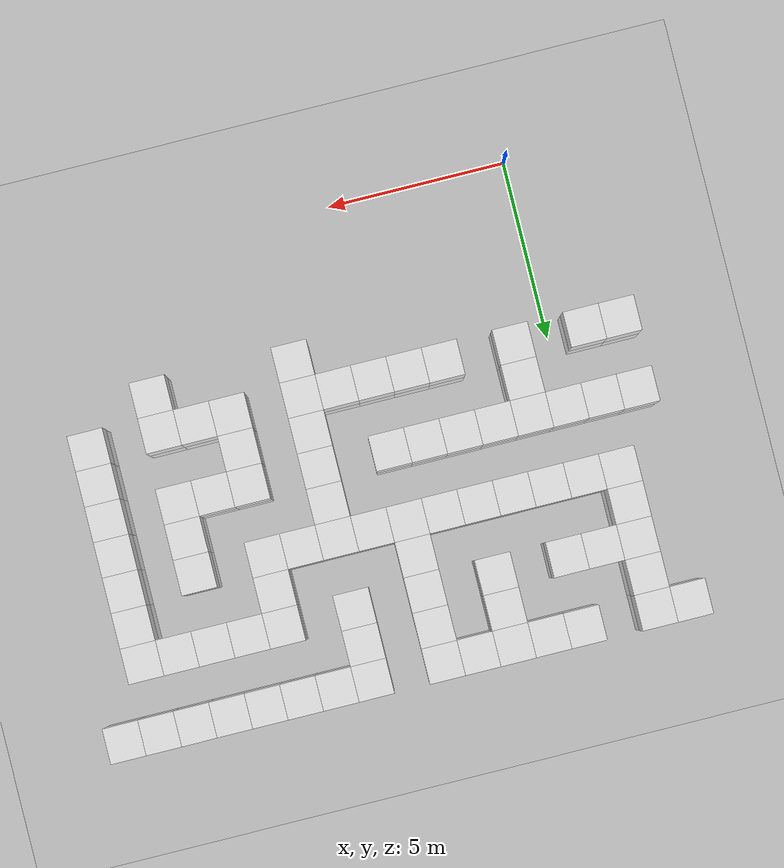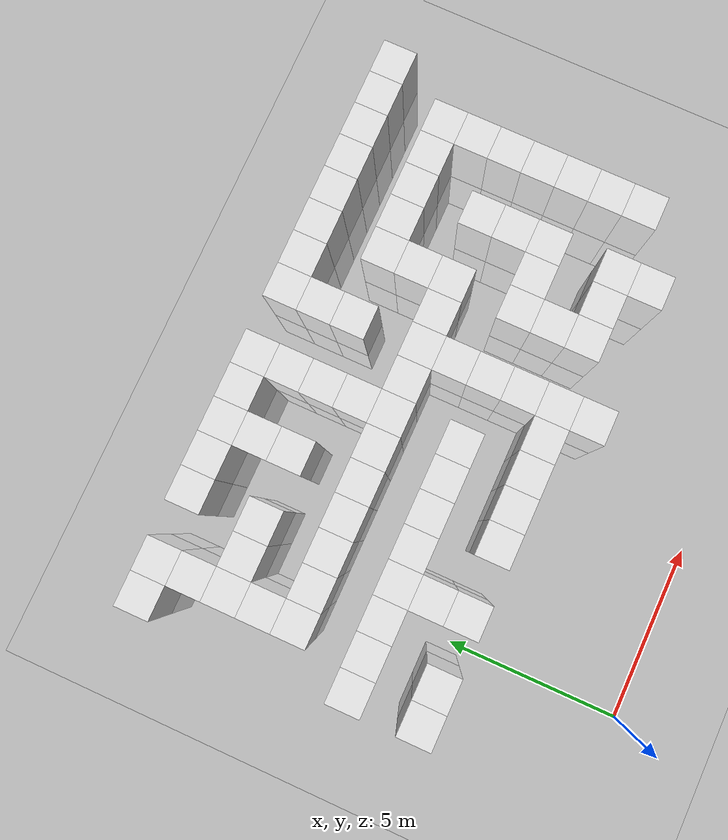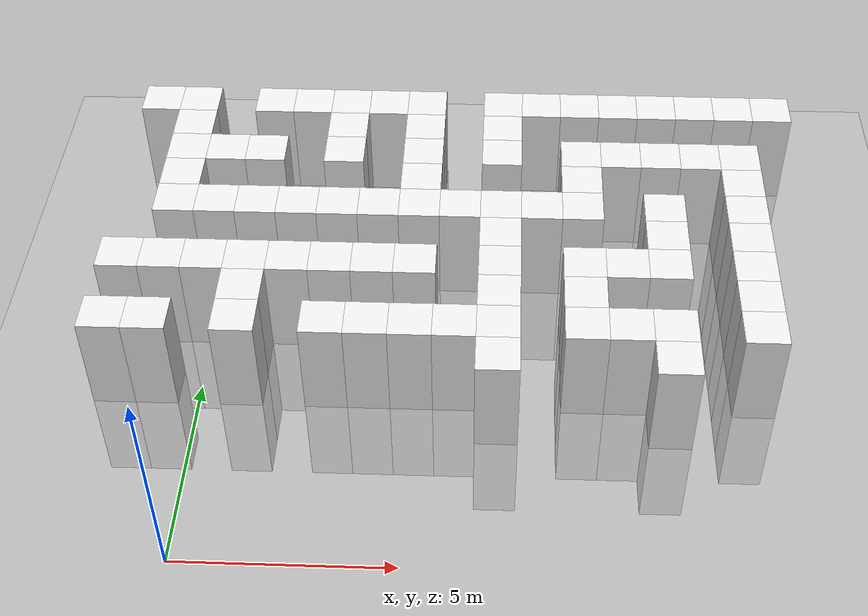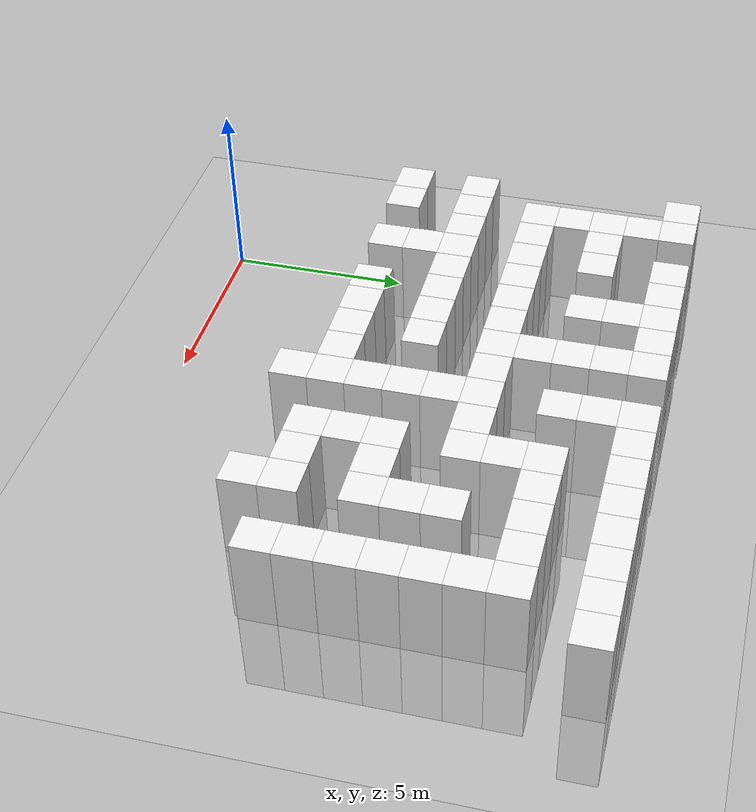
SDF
<sdf version="1.6">
 <world name="default">
  <model name="ground_plane">
   <static>1</static>
   <link name="link">
    <collision name="collision">
     <geometry><plane><normal>0 0 1</normal><size>100 100</size></plane></geometry>
     <surface><friction><ode><mu>100</mu><mu2>50</mu2></ode></friction></surface>
    </collision>
    <visual name="visual">
     <cast_shadows>0</cast_shadows>
     <geometry><plane><normal>0 0 1</normal><size>100 100</size></plane></geometry>
     <material>
      <script><uri>file://media/materials/scripts/gazebo.material</uri><name>Gazebo/Grey</name></script>
     </material>
    </visual>
   </link>
  </model>
  <model name="Unit_box_-2_13">
   <pose>-2 13 0 0 0 0</pose>
   <link name="Unit_box_-2_13_collision">
    <collision name="collision"><geometry><box><size>1 1 5</size></box></geometry></collision>
    <visual name="Unit_box_-2_13_visual">
     <geometry><box><size>1 1 5</size></box></geometry>
     <material>
      <script><name>Gazebo/White</name><uri>file://media/materials/scripts/gazebo.material</uri></script>
     </material>
    </visual>
   </link>
   <static>1</static>
  </model>
  <model name="Unit_box_-1_13">
   <pose>-1 13 0 0 0 0</pose>
   <link name="Unit_box_-1_13_collision">
    <collision name="collision"><geometry><box><size>1 1 5</size></box></geometry></collision>
    <visual name="Unit_box_-1_13_visual">
     <geometry><box><size>1 1 5</size></box></geometry>
     <material>
      <script><name>Gazebo/White</name><uri>file://media/materials/scripts/gazebo.material</uri></script>
     </material>
    </visual>
   </link>
   <static>1</static>
  </model>
  <model name="Unit_box_1_13">
   <pose>1 13 0 0 0 0</pose>
   <link name="Unit_box_1_13_collision">
    <collision name="collision"><geometry><box><size>1 1 5</size></box></geometry></collision>
    <visual name="Unit_box_1_13_visual">
     <geometry><box><size>1 1 5</size></box></geometry>
     <material>
      <script><name>Gazebo/White</name><uri>file://media/materials/scripts/gazebo.material</uri></script>
     </material>
    </visual>
   </link>
   <static>1</static>
  </model>
  <model name="Unit_box_2_13">
   <pose>2 13 0 0 0 0</pose>
   <link name="Unit_box_2_13_collision">
    <collision name="collision"><geometry><box><size>1 1 5</size></box></geometry></collision>
    <visual name="Unit_box_2_13_visual">
     <geometry><box><size>1 1 5</size></box></geometry>
     <material>
      <script><name>Gazebo/White</name><uri>file://media/materials/scripts/gazebo.material</uri></script>
     </material>
    </visual>
   </link>
   <static>1</static>
  </model>
  <model name="Unit_box_3_13">
   <pose>3 13 0 0 0 0</pose>
   <link name="Unit_box_3_13_collision">
    <collision name="collision"><geometry><box><size>1 1 5</size></box></geometry></collision>
    <visual name="Unit_box_3_13_visual">
     <geometry><box><size>1 1 5</size></box></geometry>
     <material>
      <script><name>Gazebo/White</name><uri>file://media/materials/scripts/gazebo.material</uri></script>
     </material>
    </visual>
   </link>
   <static>1</static>
  </model>
  <model name="Unit_box_4_13">
   <pose>4 13 0 0 0 0</pose>
   <link name="Unit_box_4_13_collision">
    <collision name="collision"><geometry><box><size>1 1 5</size></box></geometry></collision>
    <visual name="Unit_box_4_13_visual">
     <geometry><box><size>1 1 5</size></box></geometry>
     <material>
      <script><name>Gazebo/White</name><uri>file://media/materials/scripts/gazebo.material</uri></script>
     </material>
    </visual>
   </link>
   <static>1</static>
  </model>
  <model name="Unit_box_5_13">
   <pose>5 13 0 0 0 0</pose>
   <link name="Unit_box_5_13_collision">
    <collision name="collision"><geometry><box><size>1 1 5</size></box></geometry></collision>
    <visual name="Unit_box_5_13_visual">
     <geometry><box><size>1 1 5</size></box></geometry>
     <material>
      <script><name>Gazebo/White</name><uri>file://media/materials/scripts/gazebo.material</uri></script>
     </material>
    </visual>
   </link>
   <static>1</static>
  </model>
  <model name="Unit_box_7_13">
   <pose>7 13 0 0 0 0</pose>
   <link name="Unit_box_7_13_collision">
    <collision name="collision"><geometry><box><size>1 1 5</size></box></geometry></collision>
    <visual name="Unit_box_7_13_visual">
     <geometry><box><size>1 1 5</size></box></geometry>
     <material>
      <script><name>Gazebo/White</name><uri>file://media/materials/scripts/gazebo.material</uri></script>
     </material>
    </visual>
   </link>
   <static>1</static>
  </model>
  <model name="Unit_box_8_13">
   <pose>8 13 0 0 0 0</pose>
   <link name="Unit_box_8_13_collision">
    <collision name="collision"><geometry><box><size>1 1 5</size></box></geometry></collision>
    <visual name="Unit_box_8_13_visual">
     <geometry><box><size>1 1 5</size></box></geometry>
     <material>
      <script><name>Gazebo/White</name><uri>file://media/materials/scripts/gazebo.material</uri></script>
     </material>
    </visual>
   </link>
   <static>1</static>
  </model>
  <model name="Unit_box_9_13">
   <pose>9 13 0 0 0 0</pose>
   <link name="Unit_box_9_13_collision">
    <collision name="collision"><geometry><box><size>1 1 5</size></box></geometry></collision>
    <visual name="Unit_box_9_13_visual">
     <geometry><box><size>1 1 5</size></box></geometry>
     <material>
      <script><name>Gazebo/White</name><uri>file://media/materials/scripts/gazebo.material</uri></script>
     </material>
    </visual>
   </link>
   <static>1</static>
  </model>
  <model name="Unit_box_10_13">
   <pose>10 13 0 0 0 0</pose>
   <link name="Unit_box_10_13_collision">
    <collision name="collision"><geometry><box><size>1 1 5</size></box></geometry></collision>
    <visual name="Unit_box_10_13_visual">
     <geometry><box><size>1 1 5</size></box></geometry>
     <material>
      <script><name>Gazebo/White</name><uri>file://media/materials/scripts/gazebo.material</uri></script>
     </material>
    </visual>
   </link>
   <static>1</static>
  </model>
  <model name="Unit_box_11_13">
   <pose>11 13 0 0 0 0</pose>
   <link name="Unit_box_11_13_collision">
    <collision name="collision"><geometry><box><size>1 1 5</size></box></geometry></collision>
    <visual name="Unit_box_11_13_visual">
     <geometry><box><size>1 1 5</size></box></geometry>
     <material>
      <script><name>Gazebo/White</name><uri>file://media/materials/scripts/gazebo.material</uri></script>
     </material>
    </visual>
   </link>
   <static>1</static>
  </model>
  <model name="Unit_box_12_13">
   <pose>12 13 0 0 0 0</pose>
   <link name="Unit_box_12_13_collision">
    <collision name="collision"><geometry><box><size>1 1 5</size></box></geometry></collision>
    <visual name="Unit_box_12_13_visual">
     <geometry><box><size>1 1 5</size></box></geometry>
     <material>
      <script><name>Gazebo/White</name><uri>file://media/materials/scripts/gazebo.material</uri></script>
     </material>
    </visual>
   </link>
   <static>1</static>
  </model>
  <model name="Unit_box_13_13">
   <pose>13 13 0 0 0 0</pose>
   <link name="Unit_box_13_13_collision">
    <collision name="collision"><geometry><box><size>1 1 5</size></box></geometry></collision>
    <visual name="Unit_box_13_13_visual">
     <geometry><box><size>1 1 5</size></box></geometry>
     <material>
      <script><name>Gazebo/White</name><uri>file://media/materials/scripts/gazebo.material</uri></script>
     </material>
    </visual>
   </link>
   <static>1</static>
  </model>
  <model name="Unit_box_14_13">
   <pose>14 13 0 0 0 0</pose>
   <link name="Unit_box_14_13_collision">
    <collision name="collision"><geometry><box><size>1 1 5</size></box></geometry></collision>
    <visual name="Unit_box_14_13_visual">
     <geometry><box><size>1 1 5</size></box></geometry>
     <material>
      <script><name>Gazebo/White</name><uri>file://media/materials/scripts/gazebo.material</uri></script>
     </material>
    </visual>
   </link>
   <static>1</static>
  </model>
  <model name="Unit_box_-1_12">
   <pose>-1 12 0 0 0 0</pose>
   <link name="Unit_box_-1_12_collision">
    <collision name="collision"><geometry><box><size>1 1 5</size></box></geometry></collision>
    <visual name="Unit_box_-1_12_visual">
     <geometry><box><size>1 1 5</size></box></geometry>
     <material>
      <script><name>Gazebo/White</name><uri>file://media/materials/scripts/gazebo.material</uri></script>
     </material>
    </visual>
   </link>
   <static>1</static>
  </model>
  <model name="Unit_box_3_12">
   <pose>3 12 0 0 0 0</pose>
   <link name="Unit_box_3_12_collision">
    <collision name="collision"><geometry><box><size>1 1 5</size></box></geometry></collision>
    <visual name="Unit_box_3_12_visual">
     <geometry><box><size>1 1 5</size></box></geometry>
     <material>
      <script><name>Gazebo/White</name><uri>file://media/materials/scripts/gazebo.material</uri></script>
     </material>
    </visual>
   </link>
   <static>1</static>
  </model>
  <model name="Unit_box_5_12">
   <pose>5 12 0 0 0 0</pose>
   <link name="Unit_box_5_12_collision">
    <collision name="collision"><geometry><box><size>1 1 5</size></box></geometry></collision>
    <visual name="Unit_box_5_12_visual">
     <geometry><box><size>1 1 5</size></box></geometry>
     <material>
      <script><name>Gazebo/White</name><uri>file://media/materials/scripts/gazebo.material</uri></script>
     </material>
    </visual>
   </link>
   <static>1</static>
  </model>
  <model name="Unit_box_7_12">
   <pose>7 12 0 0 0 0</pose>
   <link name="Unit_box_7_12_collision">
    <collision name="collision"><geometry><box><size>1 1 5</size></box></geometry></collision>
    <visual name="Unit_box_7_12_visual">
     <geometry><box><size>1 1 5</size></box></geometry>
     <material>
      <script><name>Gazebo/White</name><uri>file://media/materials/scripts/gazebo.material</uri></script>
     </material>
    </visual>
   </link>
   <static>1</static>
  </model>
  <model name="Unit_box_-1_11">
   <pose>-1 11 0 0 0 0</pose>
   <link name="Unit_box_-1_11_collision">
    <collision name="collision"><geometry><box><size>1 1 5</size></box></geometry></collision>
    <visual name="Unit_box_-1_11_visual">
     <geometry><box><size>1 1 5</size></box></geometry>
     <material>
      <script><name>Gazebo/White</name><uri>file://media/materials/scripts/gazebo.material</uri></script>
     </material>
    </visual>
   </link>
   <static>1</static>
  </model>
  <model name="Unit_box_0_11">
   <pose>0 11 0 0 0 0</pose>
   <link name="Unit_box_0_11_collision">
    <collision name="collision"><geometry><box><size>1 1 5</size></box></geometry></collision>
    <visual name="Unit_box_0_11_visual">
     <geometry><box><size>1 1 5</size></box></geometry>
     <material>
      <script><name>Gazebo/White</name><uri>file://media/materials/scripts/gazebo.material</uri></script>
     </material>
    </visual>
   </link>
   <static>1</static>
  </model>
  <model name="Unit_box_1_11">
   <pose>1 11 0 0 0 0</pose>
   <link name="Unit_box_1_11_collision">
    <collision name="collision"><geometry><box><size>1 1 5</size></box></geometry></collision>
    <visual name="Unit_box_1_11_visual">
     <geometry><box><size>1 1 5</size></box></geometry>
     <material>
      <script><name>Gazebo/White</name><uri>file://media/materials/scripts/gazebo.material</uri></script>
     </material>
    </visual>
   </link>
   <static>1</static>
  </model>
  <model name="Unit_box_3_11">
   <pose>3 11 0 0 0 0</pose>
   <link name="Unit_box_3_11_collision">
    <collision name="collision"><geometry><box><size>1 1 5</size></box></geometry></collision>
    <visual name="Unit_box_3_11_visual">
     <geometry><box><size>1 1 5</size></box></geometry>
     <material>
      <script><name>Gazebo/White</name><uri>file://media/materials/scripts/gazebo.material</uri></script>
     </material>
    </visual>
   </link>
   <static>1</static>
  </model>
  <model name="Unit_box_5_11">
   <pose>5 11 0 0 0 0</pose>
   <link name="Unit_box_5_11_collision">
    <collision name="collision"><geometry><box><size>1 1 5</size></box></geometry></collision>
    <visual name="Unit_box_5_11_visual">
     <geometry><box><size>1 1 5</size></box></geometry>
     <material>
      <script><name>Gazebo/White</name><uri>file://media/materials/scripts/gazebo.material</uri></script>
     </material>
    </visual>
   </link>
   <static>1</static>
  </model>
  <model name="Unit_box_7_11">
   <pose>7 11 0 0 0 0</pose>
   <link name="Unit_box_7_11_collision">
    <collision name="collision"><geometry><box><size>1 1 5</size></box></geometry></collision>
    <visual name="Unit_box_7_11_visual">
     <geometry><box><size>1 1 5</size></box></geometry>
     <material>
      <script><name>Gazebo/White</name><uri>file://media/materials/scripts/gazebo.material</uri></script>
     </material>
    </visual>
   </link>
   <static>1</static>
  </model>
  <model name="Unit_box_9_11">
   <pose>9 11 0 0 0 0</pose>
   <link name="Unit_box_9_11_collision">
    <collision name="collision"><geometry><box><size>1 1 5</size></box></geometry></collision>
    <visual name="Unit_box_9_11_visual">
     <geometry><box><size>1 1 5</size></box></geometry>
     <material>
      <script><name>Gazebo/White</name><uri>file://media/materials/scripts/gazebo.material</uri></script>
     </material>
    </visual>
   </link>
   <static>1</static>
  </model>
  <model name="Unit_box_10_11">
   <pose>10 11 0 0 0 0</pose>
   <link name="Unit_box_10_11_collision">
    <collision name="collision"><geometry><box><size>1 1 5</size></box></geometry></collision>
    <visual name="Unit_box_10_11_visual">
     <geometry><box><size>1 1 5</size></box></geometry>
     <material>
      <script><name>Gazebo/White</name><uri>file://media/materials/scripts/gazebo.material</uri></script>
     </material>
    </visual>
   </link>
   <static>1</static>
  </model>
  <model name="Unit_box_11_11">
   <pose>11 11 0 0 0 0</pose>
   <link name="Unit_box_11_11_collision">
    <collision name="collision"><geometry><box><size>1 1 5</size></box></geometry></collision>
    <visual name="Unit_box_11_11_visual">
     <geometry><box><size>1 1 5</size></box></geometry>
     <material>
      <script><name>Gazebo/White</name><uri>file://media/materials/scripts/gazebo.material</uri></script>
     </material>
    </visual>
   </link>
   <static>1</static>
  </model>
  <model name="Unit_box_12_11">
   <pose>12 11 0 0 0 0</pose>
   <link name="Unit_box_12_11_collision">
    <collision name="collision"><geometry><box><size>1 1 5</size></box></geometry></collision>
    <visual name="Unit_box_12_11_visual">
     <geometry><box><size>1 1 5</size></box></geometry>
     <material>
      <script><name>Gazebo/White</name><uri>file://media/materials/scripts/gazebo.material</uri></script>
     </material>
    </visual>
   </link>
   <static>1</static>
  </model>
  <model name="Unit_box_13_11">
   <pose>13 11 0 0 0 0</pose>
   <link name="Unit_box_13_11_collision">
    <collision name="collision"><geometry><box><size>1 1 5</size></box></geometry></collision>
    <visual name="Unit_box_13_11_visual">
     <geometry><box><size>1 1 5</size></box></geometry>
     <material>
      <script><name>Gazebo/White</name><uri>file://media/materials/scripts/gazebo.material</uri></script>
     </material>
    </visual>
   </link>
   <static>1</static>
  </model>
  <model name="Unit_box_-1_10">
   <pose>-1 10 0 0 0 0</pose>
   <link name="Unit_box_-1_10_collision">
    <collision name="collision"><geometry><box><size>1 1 5</size></box></geometry></collision>
    <visual name="Unit_box_-1_10_visual">
     <geometry><box><size>1 1 5</size></box></geometry>
     <material>
      <script><name>Gazebo/White</name><uri>file://media/materials/scripts/gazebo.material</uri></script>
     </material>
    </visual>
   </link>
   <static>1</static>
  </model>
  <model name="Unit_box_5_10">
   <pose>5 10 0 0 0 0</pose>
   <link name="Unit_box_5_10_collision">
    <collision name="collision"><geometry><box><size>1 1 5</size></box></geometry></collision>
    <visual name="Unit_box_5_10_visual">
     <geometry><box><size>1 1 5</size></box></geometry>
     <material>
      <script><name>Gazebo/White</name><uri>file://media/materials/scripts/gazebo.material</uri></script>
     </material>
    </visual>
   </link>
   <static>1</static>
  </model>
  <model name="Unit_box_9_10">
   <pose>9 10 0 0 0 0</pose>
   <link name="Unit_box_9_10_collision">
    <collision name="collision"><geometry><box><size>1 1 5</size></box></geometry></collision>
    <visual name="Unit_box_9_10_visual">
     <geometry><box><size>1 1 5</size></box></geometry>
     <material>
      <script><name>Gazebo/White</name><uri>file://media/materials/scripts/gazebo.material</uri></script>
     </material>
    </visual>
   </link>
   <static>1</static>
  </model>
  <model name="Unit_box_13_10">
   <pose>13 10 0 0 0 0</pose>
   <link name="Unit_box_13_10_collision">
    <collision name="collision"><geometry><box><size>1 1 5</size></box></geometry></collision>
    <visual name="Unit_box_13_10_visual">
     <geometry><box><size>1 1 5</size></box></geometry>
     <material>
      <script><name>Gazebo/White</name><uri>file://media/materials/scripts/gazebo.material</uri></script>
     </material>
    </visual>
   </link>
   <static>1</static>
  </model>
  <model name="Unit_box_-1_9">
   <pose>-1 9 0 0 0 0</pose>
   <link name="Unit_box_-1_9_collision">
    <collision name="collision"><geometry><box><size>1 1 5</size></box></geometry></collision>
    <visual name="Unit_box_-1_9_visual">
     <geometry><box><size>1 1 5</size></box></geometry>
     <material>
      <script><name>Gazebo/White</name><uri>file://media/materials/scripts/gazebo.material</uri></script>
     </material>
    </visual>
   </link>
   <static>1</static>
  </model>
  <model name="Unit_box_0_9">
   <pose>0 9 0 0 0 0</pose>
   <link name="Unit_box_0_9_collision">
    <collision name="collision"><geometry><box><size>1 1 5</size></box></geometry></collision>
    <visual name="Unit_box_0_9_visual">
     <geometry><box><size>1 1 5</size></box></geometry>
     <material>
      <script><name>Gazebo/White</name><uri>file://media/materials/scripts/gazebo.material</uri></script>
     </material>
    </visual>
   </link>
   <static>1</static>
  </model>
  <model name="Unit_box_1_9">
   <pose>1 9 0 0 0 0</pose>
   <link name="Unit_box_1_9_collision">
    <collision name="collision"><geometry><box><size>1 1 5</size></box></geometry></collision>
    <visual name="Unit_box_1_9_visual">
     <geometry><box><size>1 1 5</size></box></geometry>
     <material>
      <script><name>Gazebo/White</name><uri>file://media/materials/scripts/gazebo.material</uri></script>
     </material>
    </visual>
   </link>
   <static>1</static>
  </model>
  <model name="Unit_box_2_9">
   <pose>2 9 0 0 0 0</pose>
   <link name="Unit_box_2_9_collision">
    <collision name="collision"><geometry><box><size>1 1 5</size></box></geometry></collision>
    <visual name="Unit_box_2_9_visual">
     <geometry><box><size>1 1 5</size></box></geometry>
     <material>
      <script><name>Gazebo/White</name><uri>file://media/materials/scripts/gazebo.material</uri></script>
     </material>
    </visual>
   </link>
   <static>1</static>
  </model>
  <model name="Unit_box_3_9">
   <pose>3 9 0 0 0 0</pose>
   <link name="Unit_box_3_9_collision">
    <collision name="collision"><geometry><box><size>1 1 5</size></box></geometry></collision>
    <visual name="Unit_box_3_9_visual">
     <geometry><box><size>1 1 5</size></box></geometry>
     <material>
      <script><name>Gazebo/White</name><uri>file://media/materials/scripts/gazebo.material</uri></script>
     </material>
    </visual>
   </link>
   <static>1</static>
  </model>
  <model name="Unit_box_4_9">
   <pose>4 9 0 0 0 0</pose>
   <link name="Unit_box_4_9_collision">
    <collision name="collision"><geometry><box><size>1 1 5</size></box></geometry></collision>
    <visual name="Unit_box_4_9_visual">
     <geometry><box><size>1 1 5</size></box></geometry>
     <material>
      <script><name>Gazebo/White</name><uri>file://media/materials/scripts/gazebo.material</uri></script>
     </material>
    </visual>
   </link>
   <static>1</static>
  </model>
  <model name="Unit_box_5_9">
   <pose>5 9 0 0 0 0</pose>
   <link name="Unit_box_5_9_collision">
    <collision name="collision"><geometry><box><size>1 1 5</size></box></geometry></collision>
    <visual name="Unit_box_5_9_visual">
     <geometry><box><size>1 1 5</size></box></geometry>
     <material>
      <script><name>Gazebo/White</name><uri>file://media/materials/scripts/gazebo.material</uri></script>
     </material>
    </visual>
   </link>
   <static>1</static>
  </model>
  <model name="Unit_box_6_9">
   <pose>6 9 0 0 0 0</pose>
   <link name="Unit_box_6_9_collision">
    <collision name="collision"><geometry><box><size>1 1 5</size></box></geometry></collision>
    <visual name="Unit_box_6_9_visual">
     <geometry><box><size>1 1 5</size></box></geometry>
     <material>
      <script><name>Gazebo/White</name><uri>file://media/materials/scripts/gazebo.material</uri></script>
     </material>
    </visual>
   </link>
   <static>1</static>
  </model>
  <model name="Unit_box_7_9">
   <pose>7 9 0 0 0 0</pose>
   <link name="Unit_box_7_9_collision">
    <collision name="collision"><geometry><box><size>1 1 5</size></box></geometry></collision>
    <visual name="Unit_box_7_9_visual">
     <geometry><box><size>1 1 5</size></box></geometry>
     <material>
      <script><name>Gazebo/White</name><uri>file://media/materials/scripts/gazebo.material</uri></script>
     </material>
    </visual>
   </link>
   <static>1</static>
  </model>
  <model name="Unit_box_8_9">
   <pose>8 9 0 0 0 0</pose>
   <link name="Unit_box_8_9_collision">
    <collision name="collision"><geometry><box><size>1 1 5</size></box></geometry></collision>
    <visual name="Unit_box_8_9_visual">
     <geometry><box><size>1 1 5</size></box></geometry>
     <material>
      <script><name>Gazebo/White</name><uri>file://media/materials/scripts/gazebo.material</uri></script>
     </material>
    </visual>
   </link>
   <static>1</static>
  </model>
  <model name="Unit_box_9_9">
   <pose>9 9 0 0 0 0</pose>
   <link name="Unit_box_9_9_collision">
    <collision name="collision"><geometry><box><size>1 1 5</size></box></geometry></collision>
    <visual name="Unit_box_9_9_visual">
     <geometry><box><size>1 1 5</size></box></geometry>
     <material>
      <script><name>Gazebo/White</name><uri>file://media/materials/scripts/gazebo.material</uri></script>
     </material>
    </visual>
   </link>
   <static>1</static>
  </model>
  <model name="Unit_box_11_9">
   <pose>11 9 0 0 0 0</pose>
   <link name="Unit_box_11_9_collision">
    <collision name="collision"><geometry><box><size>1 1 5</size></box></geometry></collision>
    <visual name="Unit_box_11_9_visual">
     <geometry><box><size>1 1 5</size></box></geometry>
     <material>
      <script><name>Gazebo/White</name><uri>file://media/materials/scripts/gazebo.material</uri></script>
     </material>
    </visual>
   </link>
   <static>1</static>
  </model>
  <model name="Unit_box_13_9">
   <pose>13 9 0 0 0 0</pose>
   <link name="Unit_box_13_9_collision">
    <collision name="collision"><geometry><box><size>1 1 5</size></box></geometry></collision>
    <visual name="Unit_box_13_9_visual">
     <geometry><box><size>1 1 5</size></box></geometry>
     <material>
      <script><name>Gazebo/White</name><uri>file://media/materials/scripts/gazebo.material</uri></script>
     </material>
    </visual>
   </link>
   <static>1</static>
  </model>
  <model name="Unit_box_7_8">
   <pose>7 8 0 0 0 0</pose>
   <link name="Unit_box_7_8_collision">
    <collision name="collision"><geometry><box><size>1 1 5</size></box></geometry></collision>
    <visual name="Unit_box_7_8_visual">
     <geometry><box><size>1 1 5</size></box></geometry>
     <material>
      <script><name>Gazebo/White</name><uri>file://media/materials/scripts/gazebo.material</uri></script>
     </material>
    </visual>
   </link>
   <static>1</static>
  </model>
  <model name="Unit_box_11_8">
   <pose>11 8 0 0 0 0</pose>
   <link name="Unit_box_11_8_collision">
    <collision name="collision"><geometry><box><size>1 1 5</size></box></geometry></collision>
    <visual name="Unit_box_11_8_visual">
     <geometry><box><size>1 1 5</size></box></geometry>
     <material>
      <script><name>Gazebo/White</name><uri>file://media/materials/scripts/gazebo.material</uri></script>
     </material>
    </visual>
   </link>
   <static>1</static>
  </model>
  <model name="Unit_box_13_8">
   <pose>13 8 0 0 0 0</pose>
   <link name="Unit_box_13_8_collision">
    <collision name="collision"><geometry><box><size>1 1 5</size></box></geometry></collision>
    <visual name="Unit_box_13_8_visual">
     <geometry><box><size>1 1 5</size></box></geometry>
     <material>
      <script><name>Gazebo/White</name><uri>file://media/materials/scripts/gazebo.material</uri></script>
     </material>
    </visual>
   </link>
   <static>1</static>
  </model>
  <model name="Unit_box_-2_7">
   <pose>-2 7 0 0 0 0</pose>
   <link name="Unit_box_-2_7_collision">
    <collision name="collision"><geometry><box><size>1 1 5</size></box></geometry></collision>
    <visual name="Unit_box_-2_7_visual">
     <geometry><box><size>1 1 5</size></box></geometry>
     <material>
      <script><name>Gazebo/White</name><uri>file://media/materials/scripts/gazebo.material</uri></script>
     </material>
    </visual>
   </link>
   <static>1</static>
  </model>
  <model name="Unit_box_-1_7">
   <pose>-1 7 0 0 0 0</pose>
   <link name="Unit_box_-1_7_collision">
    <collision name="collision"><geometry><box><size>1 1 5</size></box></geometry></collision>
    <visual name="Unit_box_-1_7_visual">
     <geometry><box><size>1 1 5</size></box></geometry>
     <material>
      <script><name>Gazebo/White</name><uri>file://media/materials/scripts/gazebo.material</uri></script>
     </material>
    </visual>
   </link>
   <static>1</static>
  </model>
  <model name="Unit_box_0_7">
   <pose>0 7 0 0 0 0</pose>
   <link name="Unit_box_0_7_collision">
    <collision name="collision"><geometry><box><size>1 1 5</size></box></geometry></collision>
    <visual name="Unit_box_0_7_visual">
     <geometry><box><size>1 1 5</size></box></geometry>
     <material>
      <script><name>Gazebo/White</name><uri>file://media/materials/scripts/gazebo.material</uri></script>
     </material>
    </visual>
   </link>
   <static>1</static>
  </model>
  <model name="Unit_box_1_7">
   <pose>1 7 0 0 0 0</pose>
   <link name="Unit_box_1_7_collision">
    <collision name="collision"><geometry><box><size>1 1 5</size></box></geometry></collision>
    <visual name="Unit_box_1_7_visual">
     <geometry><box><size>1 1 5</size></box></geometry>
     <material>
      <script><name>Gazebo/White</name><uri>file://media/materials/scripts/gazebo.material</uri></script>
     </material>
    </visual>
   </link>
   <static>1</static>
  </model>
  <model name="Unit_box_2_7">
   <pose>2 7 0 0 0 0</pose>
   <link name="Unit_box_2_7_collision">
    <collision name="collision"><geometry><box><size>1 1 5</size></box></geometry></collision>
    <visual name="Unit_box_2_7_visual">
     <geometry><box><size>1 1 5</size></box></geometry>
     <material>
      <script><name>Gazebo/White</name><uri>file://media/materials/scripts/gazebo.material</uri></script>
     </material>
    </visual>
   </link>
   <static>1</static>
  </model>
  <model name="Unit_box_3_7">
   <pose>3 7 0 0 0 0</pose>
   <link name="Unit_box_3_7_collision">
    <collision name="collision"><geometry><box><size>1 1 5</size></box></geometry></collision>
    <visual name="Unit_box_3_7_visual">
     <geometry><box><size>1 1 5</size></box></geometry>
     <material>
      <script><name>Gazebo/White</name><uri>file://media/materials/scripts/gazebo.material</uri></script>
     </material>
    </visual>
   </link>
   <static>1</static>
  </model>
  <model name="Unit_box_4_7">
   <pose>4 7 0 0 0 0</pose>
   <link name="Unit_box_4_7_collision">
    <collision name="collision"><geometry><box><size>1 1 5</size></box></geometry></collision>
    <visual name="Unit_box_4_7_visual">
     <geometry><box><size>1 1 5</size></box></geometry>
     <material>
      <script><name>Gazebo/White</name><uri>file://media/materials/scripts/gazebo.material</uri></script>
     </material>
    </visual>
   </link>
   <static>1</static>
  </model>
  <model name="Unit_box_5_7">
   <pose>5 7 0 0 0 0</pose>
   <link name="Unit_box_5_7_collision">
    <collision name="collision"><geometry><box><size>1 1 5</size></box></geometry></collision>
    <visual name="Unit_box_5_7_visual">
     <geometry><box><size>1 1 5</size></box></geometry>
     <material>
      <script><name>Gazebo/White</name><uri>file://media/materials/scripts/gazebo.material</uri></script>
     </material>
    </visual>
   </link>
   <static>1</static>
  </model>
  <model name="Unit_box_7_7">
   <pose>7 7 0 0 0 0</pose>
   <link name="Unit_box_7_7_collision">
    <collision name="collision"><geometry><box><size>1 1 5</size></box></geometry></collision>
    <visual name="Unit_box_7_7_visual">
     <geometry><box><size>1 1 5</size></box></geometry>
     <material>
      <script><name>Gazebo/White</name><uri>file://media/materials/scripts/gazebo.material</uri></script>
     </material>
    </visual>
   </link>
   <static>1</static>
  </model>
  <model name="Unit_box_9_7">
   <pose>9 7 0 0 0 0</pose>
   <link name="Unit_box_9_7_collision">
    <collision name="collision"><geometry><box><size>1 1 5</size></box></geometry></collision>
    <visual name="Unit_box_9_7_visual">
     <geometry><box><size>1 1 5</size></box></geometry>
     <material>
      <script><name>Gazebo/White</name><uri>file://media/materials/scripts/gazebo.material</uri></script>
     </material>
    </visual>
   </link>
   <static>1</static>
  </model>
  <model name="Unit_box_10_7">
   <pose>10 7 0 0 0 0</pose>
   <link name="Unit_box_10_7_collision">
    <collision name="collision"><geometry><box><size>1 1 5</size></box></geometry></collision>
    <visual name="Unit_box_10_7_visual">
     <geometry><box><size>1 1 5</size></box></geometry>
     <material>
      <script><name>Gazebo/White</name><uri>file://media/materials/scripts/gazebo.material</uri></script>
     </material>
    </visual>
   </link>
   <static>1</static>
  </model>
  <model name="Unit_box_11_7">
   <pose>11 7 0 0 0 0</pose>
   <link name="Unit_box_11_7_collision">
    <collision name="collision"><geometry><box><size>1 1 5</size></box></geometry></collision>
    <visual name="Unit_box_11_7_visual">
     <geometry><box><size>1 1 5</size></box></geometry>
     <material>
      <script><name>Gazebo/White</name><uri>file://media/materials/scripts/gazebo.material</uri></script>
     </material>
    </visual>
   </link>
   <static>1</static>
  </model>
  <model name="Unit_box_13_7">
   <pose>13 7 0 0 0 0</pose>
   <link name="Unit_box_13_7_collision">
    <collision name="collision"><geometry><box><size>1 1 5</size></box></geometry></collision>
    <visual name="Unit_box_13_7_visual">
     <geometry><box><size>1 1 5</size></box></geometry>
     <material>
      <script><name>Gazebo/White</name><uri>file://media/materials/scripts/gazebo.material</uri></script>
     </material>
    </visual>
   </link>
   <static>1</static>
  </model>
  <model name="Unit_box_1_6">
   <pose>1 6 0 0 0 0</pose>
   <link name="Unit_box_1_6_collision">
    <collision name="collision"><geometry><box><size>1 1 5</size></box></geometry></collision>
    <visual name="Unit_box_1_6_visual">
     <geometry><box><size>1 1 5</size></box></geometry>
     <material>
      <script><name>Gazebo/White</name><uri>file://media/materials/scripts/gazebo.material</uri></script>
     </material>
    </visual>
   </link>
   <static>1</static>
  </model>
  <model name="Unit_box_7_6">
   <pose>7 6 0 0 0 0</pose>
   <link name="Unit_box_7_6_collision">
    <collision name="collision"><geometry><box><size>1 1 5</size></box></geometry></collision>
    <visual name="Unit_box_7_6_visual">
     <geometry><box><size>1 1 5</size></box></geometry>
     <material>
      <script><name>Gazebo/White</name><uri>file://media/materials/scripts/gazebo.material</uri></script>
     </material>
    </visual>
   </link>
   <static>1</static>
  </model>
  <model name="Unit_box_9_6">
   <pose>9 6 0 0 0 0</pose>
   <link name="Unit_box_9_6_collision">
    <collision name="collision"><geometry><box><size>1 1 5</size></box></geometry></collision>
    <visual name="Unit_box_9_6_visual">
     <geometry><box><size>1 1 5</size></box></geometry>
     <material>
      <script><name>Gazebo/White</name><uri>file://media/materials/scripts/gazebo.material</uri></script>
     </material>
    </visual>
   </link>
   <static>1</static>
  </model>
  <model name="Unit_box_13_6">
   <pose>13 6 0 0 0 0</pose>
   <link name="Unit_box_13_6_collision">
    <collision name="collision"><geometry><box><size>1 1 5</size></box></geometry></collision>
    <visual name="Unit_box_13_6_visual">
     <geometry><box><size>1 1 5</size></box></geometry>
     <material>
      <script><name>Gazebo/White</name><uri>file://media/materials/scripts/gazebo.material</uri></script>
     </material>
    </visual>
   </link>
   <static>1</static>
  </model>
  <model name="Unit_box_-2_5">
   <pose>-2 5 0 0 0 0</pose>
   <link name="Unit_box_-2_5_collision">
    <collision name="collision"><geometry><box><size>1 1 5</size></box></geometry></collision>
    <visual name="Unit_box_-2_5_visual">
     <geometry><box><size>1 1 5</size></box></geometry>
     <material>
      <script><name>Gazebo/White</name><uri>file://media/materials/scripts/gazebo.material</uri></script>
     </material>
    </visual>
   </link>
   <static>1</static>
  </model>
  <model name="Unit_box_-1_5">
   <pose>-1 5 0 0 0 0</pose>
   <link name="Unit_box_-1_5_collision">
    <collision name="collision"><geometry><box><size>1 1 5</size></box></geometry></collision>
    <visual name="Unit_box_-1_5_visual">
     <geometry><box><size>1 1 5</size></box></geometry>
     <material>
      <script><name>Gazebo/White</name><uri>file://media/materials/scripts/gazebo.material</uri></script>
     </material>
    </visual>
   </link>
   <static>1</static>
  </model>
  <model name="Unit_box_1_5">
   <pose>1 5 0 0 0 0</pose>
   <link name="Unit_box_1_5_collision">
    <collision name="collision"><geometry><box><size>1 1 5</size></box></geometry></collision>
    <visual name="Unit_box_1_5_visual">
     <geometry><box><size>1 1 5</size></box></geometry>
     <material>
      <script><name>Gazebo/White</name><uri>file://media/materials/scripts/gazebo.material</uri></script>
     </material>
    </visual>
   </link>
   <static>1</static>
  </model>
  <model name="Unit_box_3_5">
   <pose>3 5 0 0 0 0</pose>
   <link name="Unit_box_3_5_collision">
    <collision name="collision"><geometry><box><size>1 1 5</size></box></geometry></collision>
    <visual name="Unit_box_3_5_visual">
     <geometry><box><size>1 1 5</size></box></geometry>
     <material>
      <script><name>Gazebo/White</name><uri>file://media/materials/scripts/gazebo.material</uri></script>
     </material>
    </visual>
   </link>
   <static>1</static>
  </model>
  <model name="Unit_box_4_5">
   <pose>4 5 0 0 0 0</pose>
   <link name="Unit_box_4_5_collision">
    <collision name="collision"><geometry><box><size>1 1 5</size></box></geometry></collision>
    <visual name="Unit_box_4_5_visual">
     <geometry><box><size>1 1 5</size></box></geometry>
     <material>
      <script><name>Gazebo/White</name><uri>file://media/materials/scripts/gazebo.material</uri></script>
     </material>
    </visual>
   </link>
   <static>1</static>
  </model>
  <model name="Unit_box_5_5">
   <pose>5 5 0 0 0 0</pose>
   <link name="Unit_box_5_5_collision">
    <collision name="collision"><geometry><box><size>1 1 5</size></box></geometry></collision>
    <visual name="Unit_box_5_5_visual">
     <geometry><box><size>1 1 5</size></box></geometry>
     <material>
      <script><name>Gazebo/White</name><uri>file://media/materials/scripts/gazebo.material</uri></script>
     </material>
    </visual>
   </link>
   <static>1</static>
  </model>
  <model name="Unit_box_6_5">
   <pose>6 5 0 0 0 0</pose>
   <link name="Unit_box_6_5_collision">
    <collision name="collision"><geometry><box><size>1 1 5</size></box></geometry></collision>
    <visual name="Unit_box_6_5_visual">
     <geometry><box><size>1 1 5</size></box></geometry>
     <material>
      <script><name>Gazebo/White</name><uri>file://media/materials/scripts/gazebo.material</uri></script>
     </material>
    </visual>
   </link>
   <static>1</static>
  </model>
  <model name="Unit_box_7_5">
   <pose>7 5 0 0 0 0</pose>
   <link name="Unit_box_7_5_collision">
    <collision name="collision"><geometry><box><size>1 1 5</size></box></geometry></collision>
    <visual name="Unit_box_7_5_visual">
     <geometry><box><size>1 1 5</size></box></geometry>
     <material>
      <script><name>Gazebo/White</name><uri>file://media/materials/scripts/gazebo.material</uri></script>
     </material>
    </visual>
   </link>
   <static>1</static>
  </model>
  <model name="Unit_box_9_5">
   <pose>9 5 0 0 0 0</pose>
   <link name="Unit_box_9_5_collision">
    <collision name="collision"><geometry><box><size>1 1 5</size></box></geometry></collision>
    <visual name="Unit_box_9_5_visual">
     <geometry><box><size>1 1 5</size></box></geometry>
     <material>
      <script><name>Gazebo/White</name><uri>file://media/materials/scripts/gazebo.material</uri></script>
     </material>
    </visual>
   </link>
   <static>1</static>
  </model>
  <model name="Unit_box_10_5">
   <pose>10 5 0 0 0 0</pose>
   <link name="Unit_box_10_5_collision">
    <collision name="collision"><geometry><box><size>1 1 5</size></box></geometry></collision>
    <visual name="Unit_box_10_5_visual">
     <geometry><box><size>1 1 5</size></box></geometry>
     <material>
      <script><name>Gazebo/White</name><uri>file://media/materials/scripts/gazebo.material</uri></script>
     </material>
    </visual>
   </link>
   <static>1</static>
  </model>
  <model name="Unit_box_11_5">
   <pose>11 5 0 0 0 0</pose>
   <link name="Unit_box_11_5_collision">
    <collision name="collision"><geometry><box><size>1 1 5</size></box></geometry></collision>
    <visual name="Unit_box_11_5_visual">
     <geometry><box><size>1 1 5</size></box></geometry>
     <material>
      <script><name>Gazebo/White</name><uri>file://media/materials/scripts/gazebo.material</uri></script>
     </material>
    </visual>
   </link>
   <static>1</static>
  </model>
  <model name="Unit_box_13_5">
   <pose>13 5 0 0 0 0</pose>
   <link name="Unit_box_13_5_collision">
    <collision name="collision"><geometry><box><size>1 1 5</size></box></geometry></collision>
    <visual name="Unit_box_13_5_visual">
     <geometry><box><size>1 1 5</size></box></geometry>
     <material>
      <script><name>Gazebo/White</name><uri>file://media/materials/scripts/gazebo.material</uri></script>
     </material>
    </visual>
   </link>
   <static>1</static>
  </model>
  <model name="Unit_box_7_4">
   <pose>7 4 0 0 0 0</pose>
   <link name="Unit_box_7_4_collision">
    <collision name="collision"><geometry><box><size>1 1 5</size></box></geometry></collision>
    <visual name="Unit_box_7_4_visual">
     <geometry><box><size>1 1 5</size></box></geometry>
     <material>
      <script><name>Gazebo/White</name><uri>file://media/materials/scripts/gazebo.material</uri></script>
     </material>
    </visual>
   </link>
   <static>1</static>
  </model>
  <model name="Unit_box_11_4">
   <pose>11 4 0 0 0 0</pose>
   <link name="Unit_box_11_4_collision">
    <collision name="collision"><geometry><box><size>1 1 5</size></box></geometry></collision>
    <visual name="Unit_box_11_4_visual">
     <geometry><box><size>1 1 5</size></box></geometry>
     <material>
      <script><name>Gazebo/White</name><uri>file://media/materials/scripts/gazebo.material</uri></script>
     </material>
    </visual>
   </link>
   <static>1</static>
  </model>
 </world>
</sdf>
